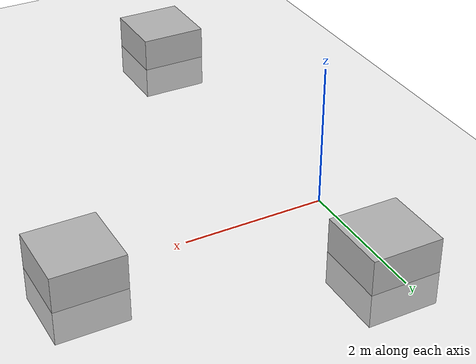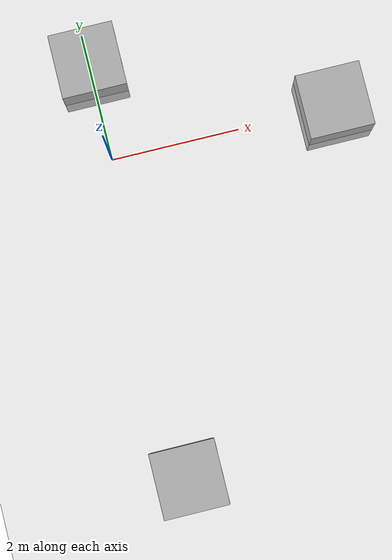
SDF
<?xml version="1.0" ?>
<sdf version="1.4">
  <world name="default">
    <include>
      <uri>model://ground_plane</uri>
    </include>
    <include>
      <uri>model://sun</uri>
    </include>

    <model name="boxX">
      <pose>3.5 0 0 0 0 0</pose>
      <link name="link">
        <collision name="collision">
          <geometry>
            <box>
              <size>1 1 1</size>
            </box>
          </geometry>
        </collision>
        <visual name="visual">
          <geometry>
            <box>
              <size>1 1 1</size>
            </box>
          </geometry>
        </visual>
      </link>
    </model>

    <model name="boxY">
      <pose>0 1.5 0 0 0 0</pose>
      <link name="link">
        <collision name="collision">
          <geometry>
            <box>
              <size>1 1 1</size>
            </box>
          </geometry>
        </collision>
        <visual name="visual">
          <geometry>
            <box>
              <size>1 1 1</size>
            </box>
          </geometry>
        </visual>
      </link>
    </model>

    <model name="box-Y">
      <pose>0 -5 0 0 0 0</pose>
      <link name="link">
        <collision name="collision">
          <geometry>
            <box>
              <size>1 1 1</size>
            </box>
          </geometry>
        </collision>
        <visual name="visual">
          <geometry>
            <box>
              <size>1 1 1</size>
            </box>
          </geometry>
        </visual>
      </link>
    </model>

  </world>
</sdf>
